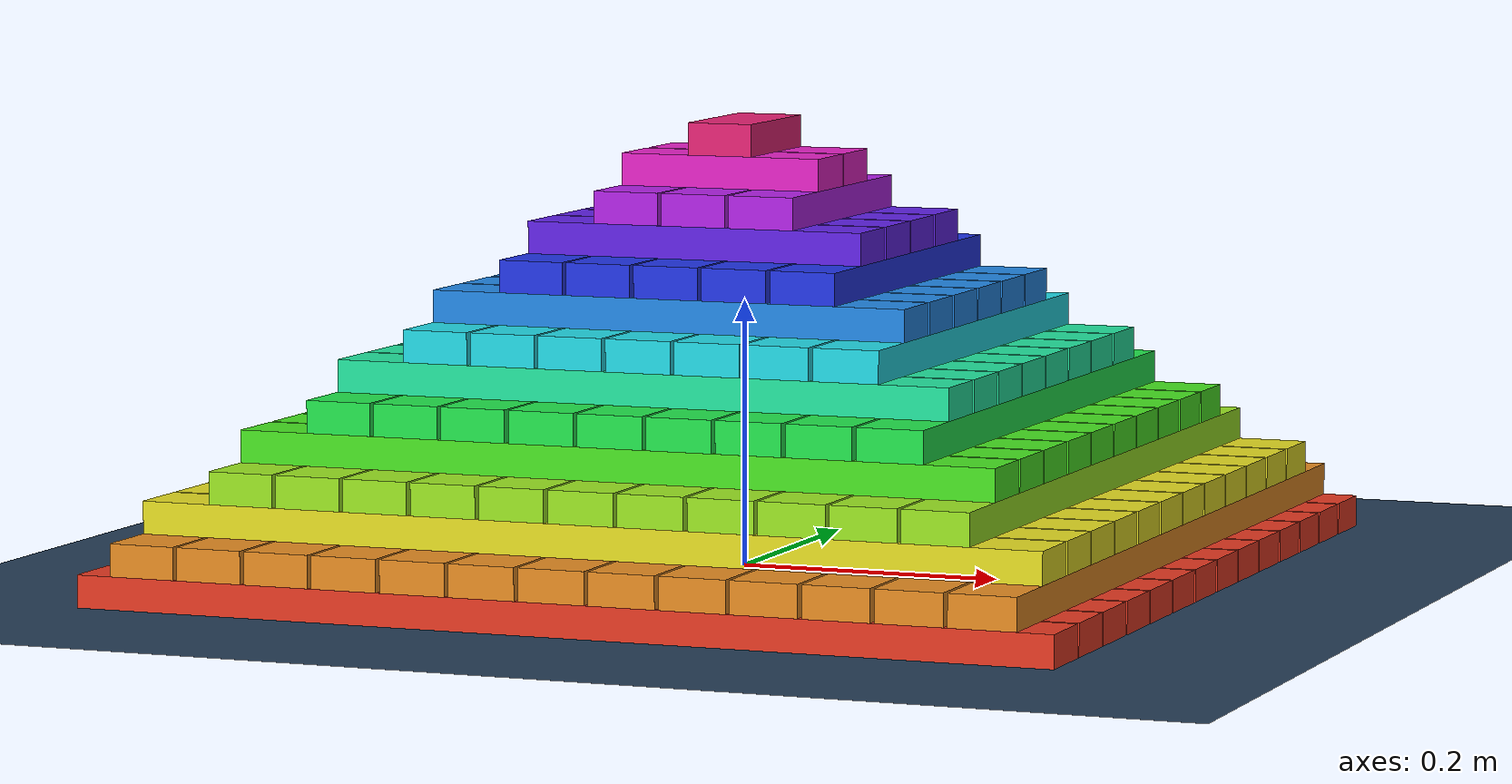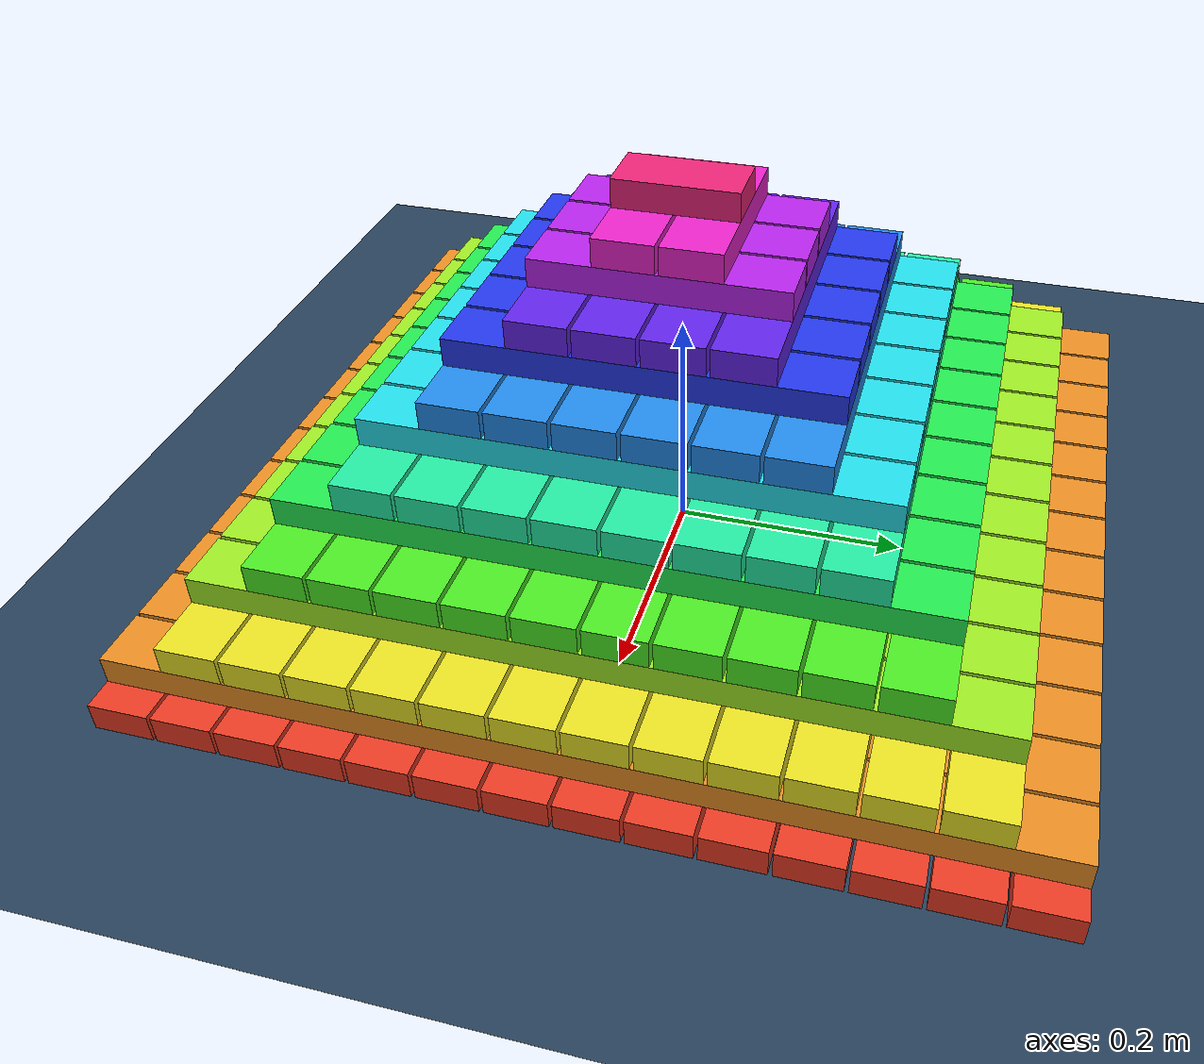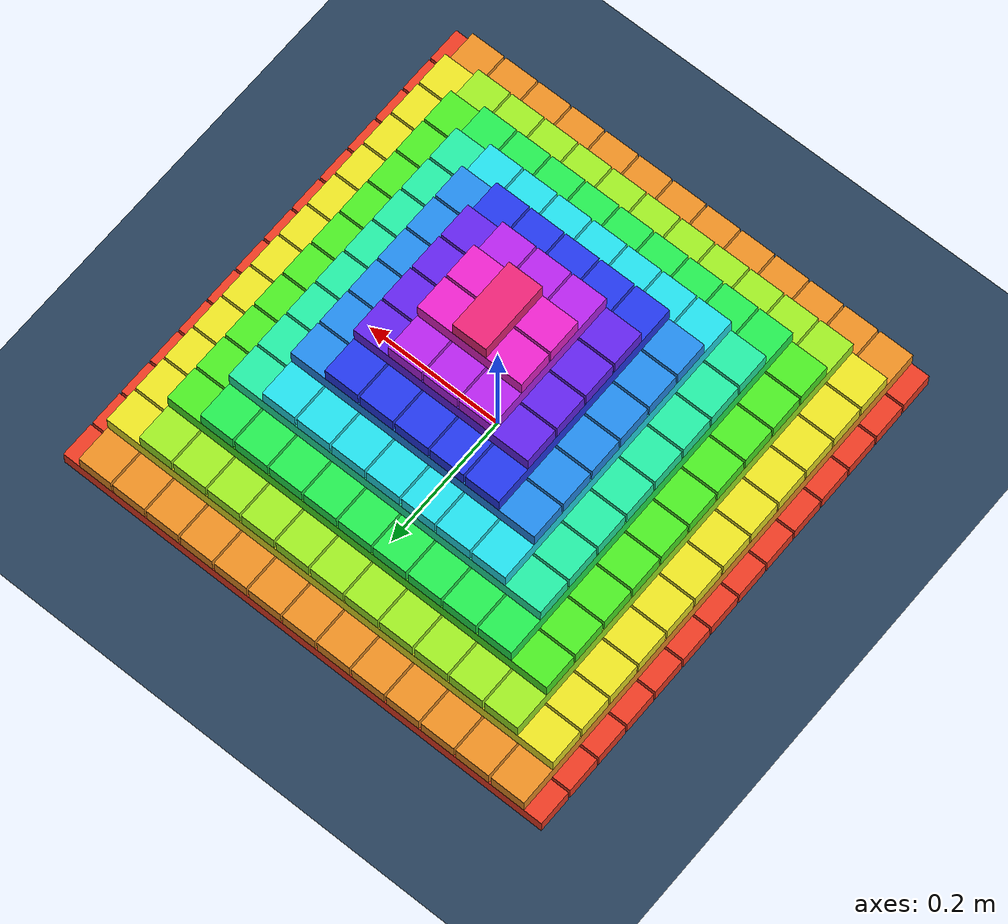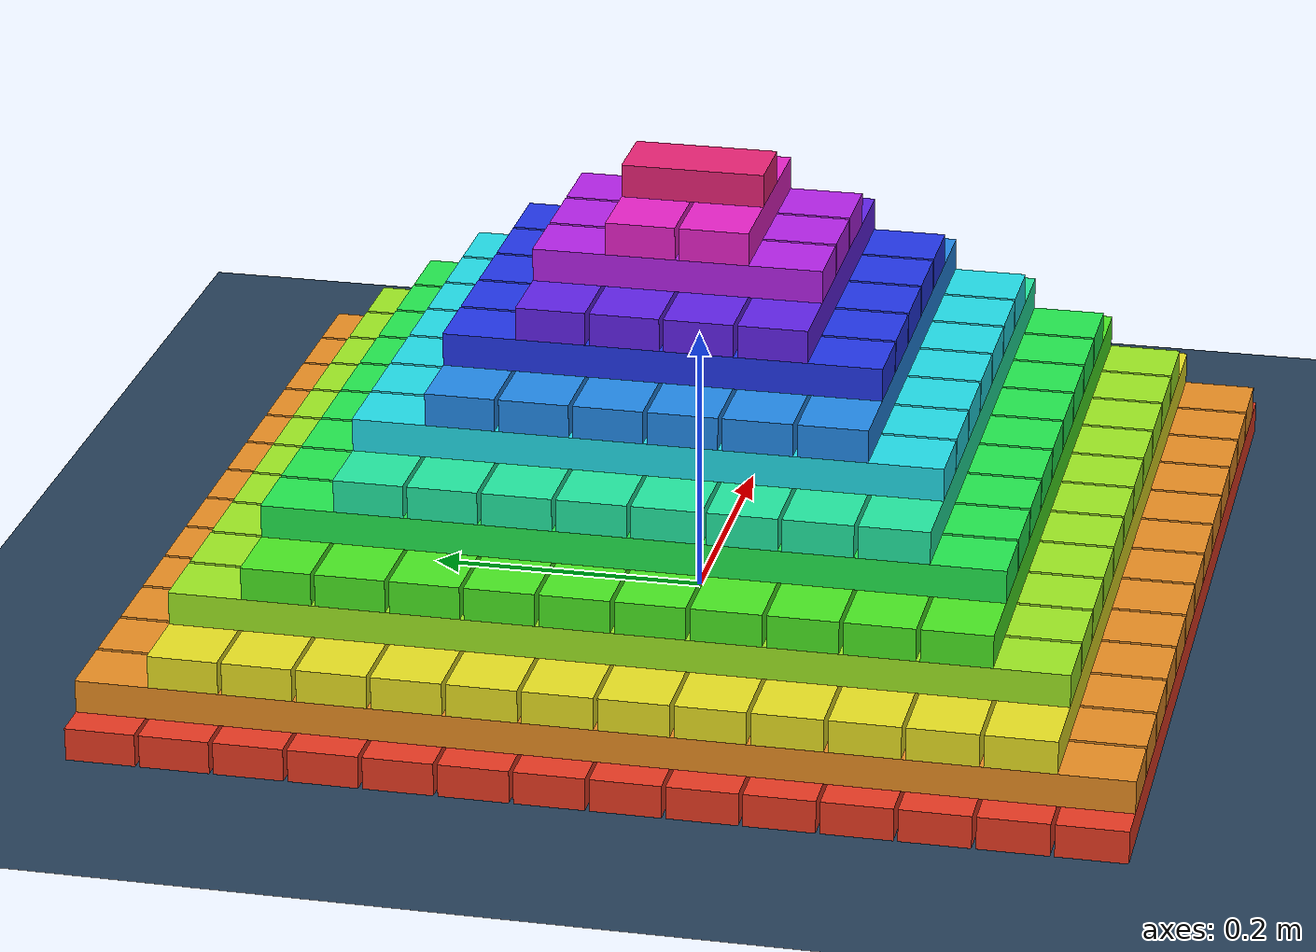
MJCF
<mujoco>
  <visual>
    <headlight diffuse="0.6 0.6 0.6" ambient="0.1 0.1 0.1" specular="0 0 0"/>
    <rgba haze="0.15 0.25 0.35 1"/>
    <global azimuth="120" elevation="-20"/>
  </visual>
  <asset>
    <texture type="skybox" builtin="gradient" rgb1="0.3 0.5 0.7" rgb2="0 0 0" width="512" height="3072"/>
    <texture type="2d" name="groundplane" builtin="checker" mark="edge" rgb1="0.2 0.3 0.4" rgb2="0.1 0.2 0.3" markrgb="0.8 0.8 0.8" width="300" height="300"/>
    <material name="groundplane" texture="groundplane" texuniform="true" texrepeat="5 5" reflectance="0.2"/>
  </asset>
  <worldbody>
    <light pos="0 0 1.5" dir="0 0 -1" directional="true"/>
    <geom name="floor" size="0 0 0.05" type="plane" material="groundplane"/>
    <body pos="0 -0.3445 0.0120">
      <geom type="box" size="0.3695 0.0250 0.0120" rgba="0.920 0.232 0.138 1"/>
      <freejoint/>
    </body>
    <body pos="0 -0.2915 0.0120">
      <geom type="box" size="0.3695 0.0250 0.0120" rgba="0.920 0.232 0.138 1"/>
      <freejoint/>
    </body>
    <body pos="0 -0.2385 0.0120">
      <geom type="box" size="0.3695 0.0250 0.0120" rgba="0.920 0.232 0.138 1"/>
      <freejoint/>
    </body>
    <body pos="0 -0.1855 0.0120">
      <geom type="box" size="0.3695 0.0250 0.0120" rgba="0.920 0.232 0.138 1"/>
      <freejoint/>
    </body>
    <body pos="0 -0.1325 0.0120">
      <geom type="box" size="0.3695 0.0250 0.0120" rgba="0.920 0.232 0.138 1"/>
      <freejoint/>
    </body>
    <body pos="0 -0.0795 0.0120">
      <geom type="box" size="0.3695 0.0250 0.0120" rgba="0.920 0.232 0.138 1"/>
      <freejoint/>
    </body>
    <body pos="0 -0.0265 0.0120">
      <geom type="box" size="0.3695 0.0250 0.0120" rgba="0.920 0.232 0.138 1"/>
      <freejoint/>
    </body>
    <body pos="0 0.0265 0.0120">
      <geom type="box" size="0.3695 0.0250 0.0120" rgba="0.920 0.232 0.138 1"/>
      <freejoint/>
    </body>
    <body pos="0 0.0795 0.0120">
      <geom type="box" size="0.3695 0.0250 0.0120" rgba="0.920 0.232 0.138 1"/>
      <freejoint/>
    </body>
    <body pos="0 0.1325 0.0120">
      <geom type="box" size="0.3695 0.0250 0.0120" rgba="0.920 0.232 0.138 1"/>
      <freejoint/>
    </body>
    <body pos="0 0.1855 0.0120">
      <geom type="box" size="0.3695 0.0250 0.0120" rgba="0.920 0.232 0.138 1"/>
      <freejoint/>
    </body>
    <body pos="0 0.2385 0.0120">
      <geom type="box" size="0.3695 0.0250 0.0120" rgba="0.920 0.232 0.138 1"/>
      <freejoint/>
    </body>
    <body pos="0 0.2915 0.0120">
      <geom type="box" size="0.3695 0.0250 0.0120" rgba="0.920 0.232 0.138 1"/>
      <freejoint/>
    </body>
    <body pos="0 0.3445 0.0120">
      <geom type="box" size="0.3695 0.0250 0.0120" rgba="0.920 0.232 0.138 1"/>
      <freejoint/>
    </body>
    <body pos="-0.3180 0 0.0360">
      <geom type="box" size="0.0250 0.3695 0.0120" rgba="0.920 0.560 0.138 1"/>
      <freejoint/>
    </body>
    <body pos="-0.2650 0 0.0360">
      <geom type="box" size="0.0250 0.3695 0.0120" rgba="0.920 0.560 0.138 1"/>
      <freejoint/>
    </body>
    <body pos="-0.2120 0 0.0360">
      <geom type="box" size="0.0250 0.3695 0.0120" rgba="0.920 0.560 0.138 1"/>
      <freejoint/>
    </body>
    <body pos="-0.1590 0 0.0360">
      <geom type="box" size="0.0250 0.3695 0.0120" rgba="0.920 0.560 0.138 1"/>
      <freejoint/>
    </body>
    <body pos="-0.1060 0 0.0360">
      <geom type="box" size="0.0250 0.3695 0.0120" rgba="0.920 0.560 0.138 1"/>
      <freejoint/>
    </body>
    <body pos="-0.0530 0 0.0360">
      <geom type="box" size="0.0250 0.3695 0.0120" rgba="0.920 0.560 0.138 1"/>
      <freejoint/>
    </body>
    <body pos="0.0000 0 0.0360">
      <geom type="box" size="0.0250 0.3695 0.0120" rgba="0.920 0.560 0.138 1"/>
      <freejoint/>
    </body>
    <body pos="0.0530 0 0.0360">
      <geom type="box" size="0.0250 0.3695 0.0120" rgba="0.920 0.560 0.138 1"/>
      <freejoint/>
    </body>
    <body pos="0.1060 0 0.0360">
      <geom type="box" size="0.0250 0.3695 0.0120" rgba="0.920 0.560 0.138 1"/>
      <freejoint/>
    </body>
    <body pos="0.1590 0 0.0360">
      <geom type="box" size="0.0250 0.3695 0.0120" rgba="0.920 0.560 0.138 1"/>
      <freejoint/>
    </body>
    <body pos="0.2120 0 0.0360">
      <geom type="box" size="0.0250 0.3695 0.0120" rgba="0.920 0.560 0.138 1"/>
      <freejoint/>
    </body>
    <body pos="0.2650 0 0.0360">
      <geom type="box" size="0.0250 0.3695 0.0120" rgba="0.920 0.560 0.138 1"/>
      <freejoint/>
    </body>
    <body pos="0.3180 0 0.0360">
      <geom type="box" size="0.0250 0.3695 0.0120" rgba="0.920 0.560 0.138 1"/>
      <freejoint/>
    </body>
    <body pos="0 -0.2915 0.0600">
      <geom type="box" size="0.3430 0.0250 0.0120" rgba="0.920 0.889 0.138 1"/>
      <freejoint/>
    </body>
    <body pos="0 -0.2385 0.0600">
      <geom type="box" size="0.3430 0.0250 0.0120" rgba="0.920 0.889 0.138 1"/>
      <freejoint/>
    </body>
    <body pos="0 -0.1855 0.0600">
      <geom type="box" size="0.3430 0.0250 0.0120" rgba="0.920 0.889 0.138 1"/>
      <freejoint/>
    </body>
    <body pos="0 -0.1325 0.0600">
      <geom type="box" size="0.3430 0.0250 0.0120" rgba="0.920 0.889 0.138 1"/>
      <freejoint/>
    </body>
    <body pos="0 -0.0795 0.0600">
      <geom type="box" size="0.3430 0.0250 0.0120" rgba="0.920 0.889 0.138 1"/>
      <freejoint/>
    </body>
    <body pos="0 -0.0265 0.0600">
      <geom type="box" size="0.3430 0.0250 0.0120" rgba="0.920 0.889 0.138 1"/>
      <freejoint/>
    </body>
    <body pos="0 0.0265 0.0600">
      <geom type="box" size="0.3430 0.0250 0.0120" rgba="0.920 0.889 0.138 1"/>
      <freejoint/>
    </body>
    <body pos="0 0.0795 0.0600">
      <geom type="box" size="0.3430 0.0250 0.0120" rgba="0.920 0.889 0.138 1"/>
      <freejoint/>
    </body>
    <body pos="0 0.1325 0.0600">
      <geom type="box" size="0.3430 0.0250 0.0120" rgba="0.920 0.889 0.138 1"/>
      <freejoint/>
    </body>
    <body pos="0 0.1855 0.0600">
      <geom type="box" size="0.3430 0.0250 0.0120" rgba="0.920 0.889 0.138 1"/>
      <freejoint/>
    </body>
    <body pos="0 0.2385 0.0600">
      <geom type="box" size="0.3430 0.0250 0.0120" rgba="0.920 0.889 0.138 1"/>
      <freejoint/>
    </body>
    <body pos="0 0.2915 0.0600">
      <geom type="box" size="0.3430 0.0250 0.0120" rgba="0.920 0.889 0.138 1"/>
      <freejoint/>
    </body>
    <body pos="-0.2650 0 0.0840">
      <geom type="box" size="0.0250 0.3165 0.0120" rgba="0.623 0.920 0.138 1"/>
      <freejoint/>
    </body>
    <body pos="-0.2120 0 0.0840">
      <geom type="box" size="0.0250 0.3165 0.0120" rgba="0.623 0.920 0.138 1"/>
      <freejoint/>
    </body>
    <body pos="-0.1590 0 0.0840">
      <geom type="box" size="0.0250 0.3165 0.0120" rgba="0.623 0.920 0.138 1"/>
      <freejoint/>
    </body>
    <body pos="-0.1060 0 0.0840">
      <geom type="box" size="0.0250 0.3165 0.0120" rgba="0.623 0.920 0.138 1"/>
      <freejoint/>
    </body>
    <body pos="-0.0530 0 0.0840">
      <geom type="box" size="0.0250 0.3165 0.0120" rgba="0.623 0.920 0.138 1"/>
      <freejoint/>
    </body>
    <body pos="0.0000 0 0.0840">
      <geom type="box" size="0.0250 0.3165 0.0120" rgba="0.623 0.920 0.138 1"/>
      <freejoint/>
    </body>
    <body pos="0.0530 0 0.0840">
      <geom type="box" size="0.0250 0.3165 0.0120" rgba="0.623 0.920 0.138 1"/>
      <freejoint/>
    </body>
    <body pos="0.1060 0 0.0840">
      <geom type="box" size="0.0250 0.3165 0.0120" rgba="0.623 0.920 0.138 1"/>
      <freejoint/>
    </body>
    <body pos="0.1590 0 0.0840">
      <geom type="box" size="0.0250 0.3165 0.0120" rgba="0.623 0.920 0.138 1"/>
      <freejoint/>
    </body>
    <body pos="0.2120 0 0.0840">
      <geom type="box" size="0.0250 0.3165 0.0120" rgba="0.623 0.920 0.138 1"/>
      <freejoint/>
    </body>
    <body pos="0.2650 0 0.0840">
      <geom type="box" size="0.0250 0.3165 0.0120" rgba="0.623 0.920 0.138 1"/>
      <freejoint/>
    </body>
    <body pos="0 -0.2385 0.1080">
      <geom type="box" size="0.2900 0.0250 0.0120" rgba="0.294 0.920 0.138 1"/>
      <freejoint/>
    </body>
    <body pos="0 -0.1855 0.1080">
      <geom type="box" size="0.2900 0.0250 0.0120" rgba="0.294 0.920 0.138 1"/>
      <freejoint/>
    </body>
    <body pos="0 -0.1325 0.1080">
      <geom type="box" size="0.2900 0.0250 0.0120" rgba="0.294 0.920 0.138 1"/>
      <freejoint/>
    </body>
    <body pos="0 -0.0795 0.1080">
      <geom type="box" size="0.2900 0.0250 0.0120" rgba="0.294 0.920 0.138 1"/>
      <freejoint/>
    </body>
    <body pos="0 -0.0265 0.1080">
      <geom type="box" size="0.2900 0.0250 0.0120" rgba="0.294 0.920 0.138 1"/>
      <freejoint/>
    </body>
    <body pos="0 0.0265 0.1080">
      <geom type="box" size="0.2900 0.0250 0.0120" rgba="0.294 0.920 0.138 1"/>
      <freejoint/>
    </body>
    <body pos="0 0.0795 0.1080">
      <geom type="box" size="0.2900 0.0250 0.0120" rgba="0.294 0.920 0.138 1"/>
      <freejoint/>
    </body>
    <body pos="0 0.1325 0.1080">
      <geom type="box" size="0.2900 0.0250 0.0120" rgba="0.294 0.920 0.138 1"/>
      <freejoint/>
    </body>
    <body pos="0 0.1855 0.1080">
      <geom type="box" size="0.2900 0.0250 0.0120" rgba="0.294 0.920 0.138 1"/>
      <freejoint/>
    </body>
    <body pos="0 0.2385 0.1080">
      <geom type="box" size="0.2900 0.0250 0.0120" rgba="0.294 0.920 0.138 1"/>
      <freejoint/>
    </body>
    <body pos="-0.2120 0 0.1320">
      <geom type="box" size="0.0250 0.2635 0.0120" rgba="0.138 0.920 0.310 1"/>
      <freejoint/>
    </body>
    <body pos="-0.1590 0 0.1320">
      <geom type="box" size="0.0250 0.2635 0.0120" rgba="0.138 0.920 0.310 1"/>
      <freejoint/>
    </body>
    <body pos="-0.1060 0 0.1320">
      <geom type="box" size="0.0250 0.2635 0.0120" rgba="0.138 0.920 0.310 1"/>
      <freejoint/>
    </body>
    <body pos="-0.0530 0 0.1320">
      <geom type="box" size="0.0250 0.2635 0.0120" rgba="0.138 0.920 0.310 1"/>
      <freejoint/>
    </body>
    <body pos="0.0000 0 0.1320">
      <geom type="box" size="0.0250 0.2635 0.0120" rgba="0.138 0.920 0.310 1"/>
      <freejoint/>
    </body>
    <body pos="0.0530 0 0.1320">
      <geom type="box" size="0.0250 0.2635 0.0120" rgba="0.138 0.920 0.310 1"/>
      <freejoint/>
    </body>
    <body pos="0.1060 0 0.1320">
      <geom type="box" size="0.0250 0.2635 0.0120" rgba="0.138 0.920 0.310 1"/>
      <freejoint/>
    </body>
    <body pos="0.1590 0 0.1320">
      <geom type="box" size="0.0250 0.2635 0.0120" rgba="0.138 0.920 0.310 1"/>
      <freejoint/>
    </body>
    <body pos="0.2120 0 0.1320">
      <geom type="box" size="0.0250 0.2635 0.0120" rgba="0.138 0.920 0.310 1"/>
      <freejoint/>
    </body>
    <body pos="0 -0.1855 0.1560">
      <geom type="box" size="0.2370 0.0250 0.0120" rgba="0.138 0.920 0.638 1"/>
      <freejoint/>
    </body>
    <body pos="0 -0.1325 0.1560">
      <geom type="box" size="0.2370 0.0250 0.0120" rgba="0.138 0.920 0.638 1"/>
      <freejoint/>
    </body>
    <body pos="0 -0.0795 0.1560">
      <geom type="box" size="0.2370 0.0250 0.0120" rgba="0.138 0.920 0.638 1"/>
      <freejoint/>
    </body>
    <body pos="0 -0.0265 0.1560">
      <geom type="box" size="0.2370 0.0250 0.0120" rgba="0.138 0.920 0.638 1"/>
      <freejoint/>
    </body>
    <body pos="0 0.0265 0.1560">
      <geom type="box" size="0.2370 0.0250 0.0120" rgba="0.138 0.920 0.638 1"/>
      <freejoint/>
    </body>
    <body pos="0 0.0795 0.1560">
      <geom type="box" size="0.2370 0.0250 0.0120" rgba="0.138 0.920 0.638 1"/>
      <freejoint/>
    </body>
    <body pos="0 0.1325 0.1560">
      <geom type="box" size="0.2370 0.0250 0.0120" rgba="0.138 0.920 0.638 1"/>
      <freejoint/>
    </body>
    <body pos="0 0.1855 0.1560">
      <geom type="box" size="0.2370 0.0250 0.0120" rgba="0.138 0.920 0.638 1"/>
      <freejoint/>
    </body>
    <body pos="-0.1590 0 0.1800">
      <geom type="box" size="0.0250 0.2105 0.0120" rgba="0.138 0.873 0.920 1"/>
      <freejoint/>
    </body>
    <body pos="-0.1060 0 0.1800">
      <geom type="box" size="0.0250 0.2105 0.0120" rgba="0.138 0.873 0.920 1"/>
      <freejoint/>
    </body>
    <body pos="-0.0530 0 0.1800">
      <geom type="box" size="0.0250 0.2105 0.0120" rgba="0.138 0.873 0.920 1"/>
      <freejoint/>
    </body>
    <body pos="0.0000 0 0.1800">
      <geom type="box" size="0.0250 0.2105 0.0120" rgba="0.138 0.873 0.920 1"/>
      <freejoint/>
    </body>
    <body pos="0.0530 0 0.1800">
      <geom type="box" size="0.0250 0.2105 0.0120" rgba="0.138 0.873 0.920 1"/>
      <freejoint/>
    </body>
    <body pos="0.1060 0 0.1800">
      <geom type="box" size="0.0250 0.2105 0.0120" rgba="0.138 0.873 0.920 1"/>
      <freejoint/>
    </body>
    <body pos="0.1590 0 0.1800">
      <geom type="box" size="0.0250 0.2105 0.0120" rgba="0.138 0.873 0.920 1"/>
      <freejoint/>
    </body>
    <body pos="0 -0.1325 0.2040">
      <geom type="box" size="0.1840 0.0250 0.0120" rgba="0.138 0.545 0.920 1"/>
      <freejoint/>
    </body>
    <body pos="0 -0.0795 0.2040">
      <geom type="box" size="0.1840 0.0250 0.0120" rgba="0.138 0.545 0.920 1"/>
      <freejoint/>
    </body>
    <body pos="0 -0.0265 0.2040">
      <geom type="box" size="0.1840 0.0250 0.0120" rgba="0.138 0.545 0.920 1"/>
      <freejoint/>
    </body>
    <body pos="0 0.0265 0.2040">
      <geom type="box" size="0.1840 0.0250 0.0120" rgba="0.138 0.545 0.920 1"/>
      <freejoint/>
    </body>
    <body pos="0 0.0795 0.2040">
      <geom type="box" size="0.1840 0.0250 0.0120" rgba="0.138 0.545 0.920 1"/>
      <freejoint/>
    </body>
    <body pos="0 0.1325 0.2040">
      <geom type="box" size="0.1840 0.0250 0.0120" rgba="0.138 0.545 0.920 1"/>
      <freejoint/>
    </body>
    <body pos="-0.1060 0 0.2280">
      <geom type="box" size="0.0250 0.1575 0.0120" rgba="0.138 0.216 0.920 1"/>
      <freejoint/>
    </body>
    <body pos="-0.0530 0 0.2280">
      <geom type="box" size="0.0250 0.1575 0.0120" rgba="0.138 0.216 0.920 1"/>
      <freejoint/>
    </body>
    <body pos="0.0000 0 0.2280">
      <geom type="box" size="0.0250 0.1575 0.0120" rgba="0.138 0.216 0.920 1"/>
      <freejoint/>
    </body>
    <body pos="0.0530 0 0.2280">
      <geom type="box" size="0.0250 0.1575 0.0120" rgba="0.138 0.216 0.920 1"/>
      <freejoint/>
    </body>
    <body pos="0.1060 0 0.2280">
      <geom type="box" size="0.0250 0.1575 0.0120" rgba="0.138 0.216 0.920 1"/>
      <freejoint/>
    </body>
    <body pos="0 -0.0795 0.2520">
      <geom type="box" size="0.1310 0.0250 0.0120" rgba="0.388 0.138 0.920 1"/>
      <freejoint/>
    </body>
    <body pos="0 -0.0265 0.2520">
      <geom type="box" size="0.1310 0.0250 0.0120" rgba="0.388 0.138 0.920 1"/>
      <freejoint/>
    </body>
    <body pos="0 0.0265 0.2520">
      <geom type="box" size="0.1310 0.0250 0.0120" rgba="0.388 0.138 0.920 1"/>
      <freejoint/>
    </body>
    <body pos="0 0.0795 0.2520">
      <geom type="box" size="0.1310 0.0250 0.0120" rgba="0.388 0.138 0.920 1"/>
      <freejoint/>
    </body>
    <body pos="-0.0530 0 0.2760">
      <geom type="box" size="0.0250 0.1045 0.0120" rgba="0.717 0.138 0.920 1"/>
      <freejoint/>
    </body>
    <body pos="0.0000 0 0.2760">
      <geom type="box" size="0.0250 0.1045 0.0120" rgba="0.717 0.138 0.920 1"/>
      <freejoint/>
    </body>
    <body pos="0.0530 0 0.2760">
      <geom type="box" size="0.0250 0.1045 0.0120" rgba="0.717 0.138 0.920 1"/>
      <freejoint/>
    </body>
    <body pos="0 -0.0265 0.3000">
      <geom type="box" size="0.0780 0.0250 0.0120" rgba="0.920 0.138 0.795 1"/>
      <freejoint/>
    </body>
    <body pos="0 0.0265 0.3000">
      <geom type="box" size="0.0780 0.0250 0.0120" rgba="0.920 0.138 0.795 1"/>
      <freejoint/>
    </body>
    <body pos="0.0000 0 0.3240">
      <geom type="box" size="0.0250 0.0515 0.0120" rgba="0.920 0.138 0.466 1"/>
      <freejoint/>
    </body>
  </worldbody>
</mujoco>
